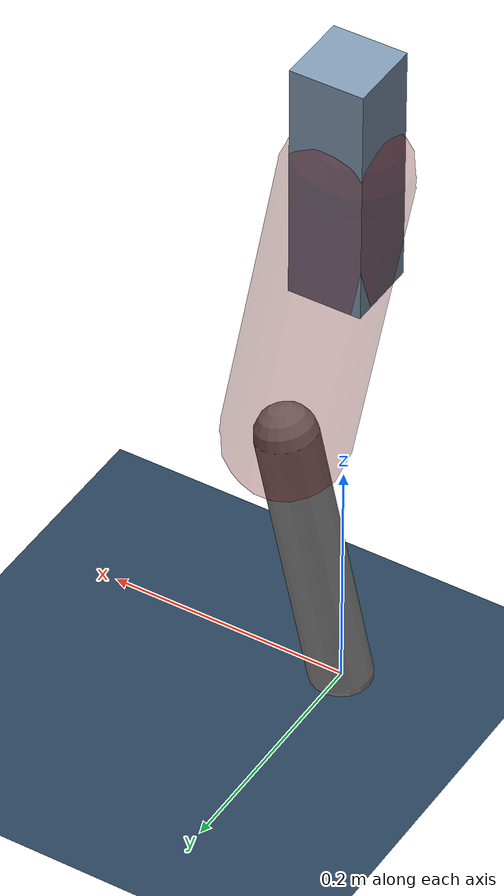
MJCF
<mujoco model="Hopper2D">
	<compiler inertiafromgeom="true" angle="radian" />
	<option timestep="0.001" integrator="implicit" cone="elliptic" solver="Newton" tolerance="1e-10" />

	<default>
		<geom contype="1" conaffinity="1" condim="3" friction="2 0.005 0.0001" solref="0.005 1" />
		<joint limited="true" damping="0.1" />
	</default>

	<asset>
		<texture name="skybox" type="skybox" builtin="gradient" rgb1=".4 .6 .8" rgb2="0 0 0" width="800" height="800" />
		<texture name="grid" type="2d" builtin="checker" rgb1=".1 .2 .3" rgb2=".2 .3 .4" width="300" height="300" mark="edge" markrgb=".2 .3 .4" />
		<material name="ground" texture="grid" texrepeat="1 1" texuniform="true" reflectance="0.1" />
		<material name="leg" rgba="0.5 0.6 0.7 1" />
	</asset>

	<worldbody>

		<geom name="floor" type="plane" size="5 5 0.25" material="ground" />

		<light directional="false" diffuse="0.8 0.8 0.8" specular="0.3 0.3 0.3" pos="0 0 2" dir="0 0 -1" />
		<light mode="targetbodycom" target="base" directional="false" diffuse="0.8 0.8 0.8" specular="0.3 0.3 0.3" pos="0 0 2" dir="0 0 -1" />

		<camera name="fixed" pos="0 -2 1" xyaxes="1 0 0 0 0 1" />
		<camera name="tracking" mode="trackcom" pos="0 -3 1" />

		<body name="root" pos="0 0 0.4847397745355505">
			<joint name="slide_x" type="slide" axis="1 0 0" range="-100 100" />
			<joint name="slide_z" type="slide" axis="0 0 1" range="0 10" />

			<body name="base" pos="0 0 0">
				<geom name="torso" type="box" size="0.03 0.03 0.1" mass="2.562" material="leg" />

				<body name="link1" pos="0 0 0" euler="0 1.3892008246543504 0">
					<joint type="hinge" axis="0 -1 0" pos="0 0 0" name="hinge1" limited="true" range="-3.14 3.14" stiffness="0" damping="0.1" />
					<geom name="thigh" type="capsule" fromto="0 0 0 0.2725216547471315 0 0" size="0.05" rgba="0.5 0 0 0.3" mass="0.9153084678172551" />

					<body name="link2" pos="0.2725216547471315 0 0" euler="0 0.4049287333515396 0">
						<joint type="hinge" axis="0 -1 0" pos="0 0 0" name="hinge2" limited="true" range="-3.14 3.14" stiffness="0" damping="0.1" />
						<geom name="shank" type="capsule" fromto="0 0 0 0.222218119788419 0 0" size="0.025" mass="0.4194963078095771" />

					</body>
				</body>
			</body>
		</body>
	</worldbody>

	<actuator>
		<motor name="torque1" joint="hinge1" ctrlrange="-100.33087289350561 100.33087289350561" ctrllimited="true" gear="1" />
		<motor name="torque2" joint="hinge2" ctrlrange="-84.29035604219895 84.29035604219895" ctrllimited="true" gear="1" />
	</actuator>
</mujoco>
